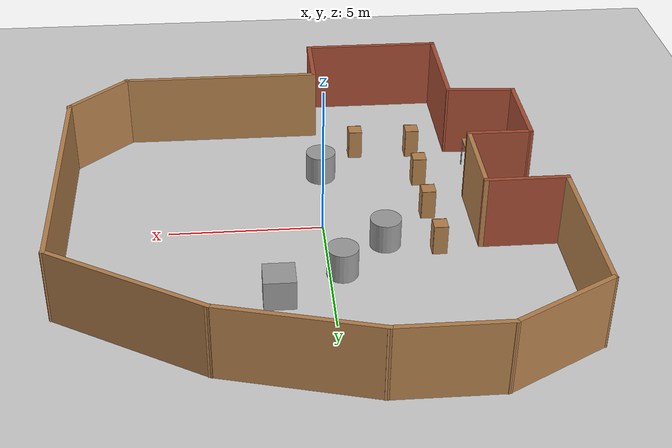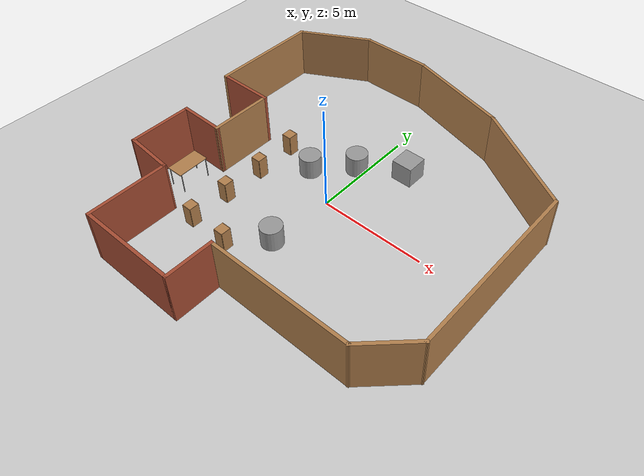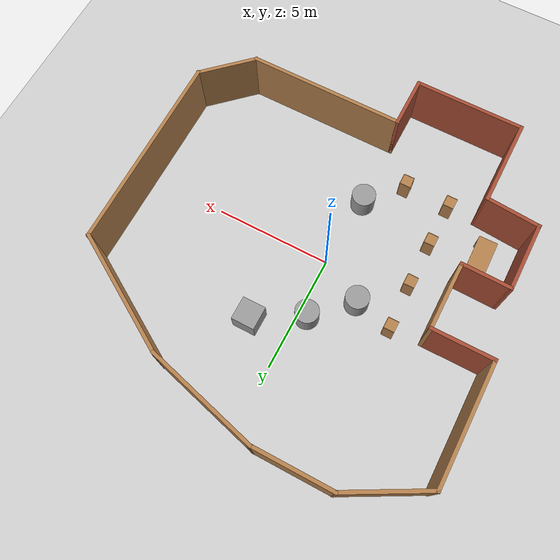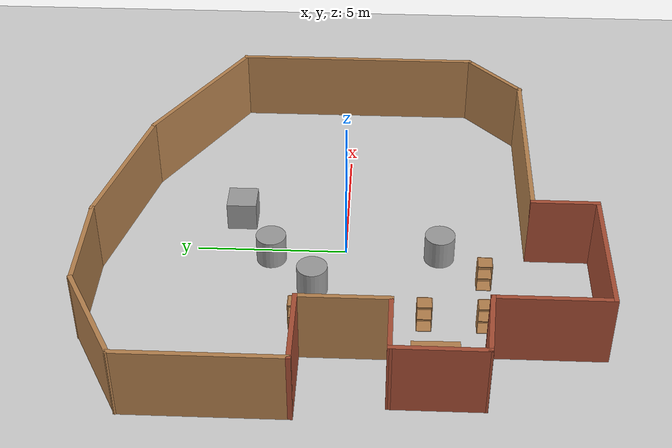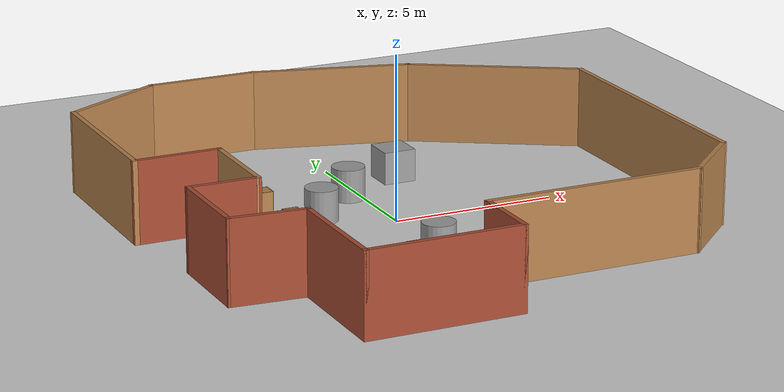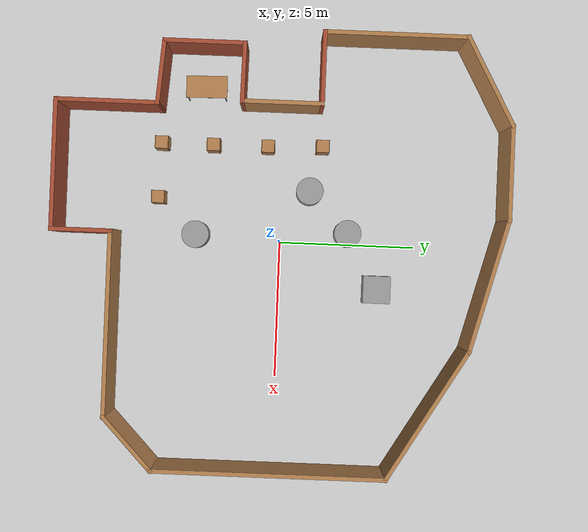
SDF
<sdf version="1.7">
 <world name="default">
  <light name="sun" type="directional">
   <pose>0 0 10 0 -0 0</pose>
   <diffuse>0.8 0.8 0.8 1</diffuse>
   <specular>0.2 0.2 0.2 1</specular>
   <attenuation>
    <range>1000</range>
    <constant>0.9</constant>
    <linear>0.01</linear>
    <quadratic>0.001</quadratic>
   </attenuation>
   <direction>-0.5 0.1 -0.9</direction>
   <spot><inner_angle>0</inner_angle><outer_angle>0</outer_angle><falloff>0</falloff></spot>
  </light>
  <model name="ground_plane">
   <static>1</static>
   <link name="link">
    <collision name="collision">
     <geometry><plane><normal>0 0 1</normal><size>100 100</size></plane></geometry>
     <surface>
      <contact><collide_bitmask>65535</collide_bitmask></contact>
      <friction><ode><mu>100</mu><mu2>50</mu2></ode></friction>
     </surface>
    </collision>
    <visual name="visual">
     <cast_shadows>0</cast_shadows>
     <geometry><plane><normal>0 0 1</normal><size>100 100</size></plane></geometry>
     <material>
      <script><uri>file://media/materials/scripts/gazebo.material</uri><name>Gazebo/Grey</name></script>
     </material>
    </visual>
   </link>
  </model>
  <gravity>0 0 -9.8</gravity>
  <magnetic_field>6e-06 2.3e-05 -4.2e-05</magnetic_field>
  <atmosphere type="adiabatic"/>
  <physics type="ode">
   <max_step_size>0.001</max_step_size>
   <real_time_factor>1</real_time_factor>
   <real_time_update_rate>1000</real_time_update_rate>
  </physics>
  <scene><ambient>0.4 0.4 0.4 1</ambient><background>0.7 0.7 0.7 1</background><shadows>1</shadows></scene>
  <spherical_coordinates>
   <surface_model>EARTH_WGS84</surface_model>
   <latitude_deg>0</latitude_deg>
   <longitude_deg>0</longitude_deg>
   <elevation>0</elevation>
   <heading_deg>0</heading_deg>
  </spherical_coordinates>
  <model name="new_world">
   <pose>0.407387 0.023145 0 0 -0 0</pose>
   <link name="Wall_10">
    <collision name="Wall_10_Collision">
     <geometry><box><size>4.75 0.15 2.5</size></box></geometry>
     <pose>0 0 1.25 0 -0 0</pose>
    </collision>
    <visual name="Wall_10_Visual">
     <pose>0 0 1.25 0 -0 0</pose>
     <geometry><box><size>4.75 0.15 2.5</size></box></geometry>
     <material>
      <script><uri>file://media/materials/scripts/gazebo.material</uri><name>Gazebo/Bricks</name></script>
      <ambient>1 1 1 1</ambient>
     </material>
     <meta><layer>0</layer></meta>
    </visual>
    <pose>-2.85118 -8.12237 0 0 -0 0</pose>
   </link>
   <link name="Wall_11">
    <collision name="Wall_11_Collision">
     <geometry><box><size>2.25 0.15 2.5</size></box></geometry>
     <pose>0 0 1.25 0 -0 0</pose>
    </collision>
    <visual name="Wall_11_Visual">
     <pose>0 0 1.25 0 -0 0</pose>
     <geometry><box><size>2.25 0.15 2.5</size></box></geometry>
     <material>
      <script><uri>file://media/materials/scripts/gazebo.material</uri><name>Gazebo/Bricks</name></script>
      <ambient>1 1 1 1</ambient>
     </material>
     <meta><layer>0</layer></meta>
    </visual>
    <pose>-0.551178 -7.07237 0 0 -0 1.5708</pose>
   </link>
   <link name="Wall_12">
    <collision name="Wall_12_Collision">
     <geometry><box><size>6.75 0.15 2.5</size></box></geometry>
     <pose>0 0 1.25 0 -0 0</pose>
    </collision>
    <visual name="Wall_12_Visual">
     <pose>0 0 1.25 0 -0 0</pose>
     <geometry><box><size>6.75 0.15 2.5</size></box></geometry>
     <material>
      <script><uri>file://media/materials/scripts/gazebo.material</uri><name>Gazebo/Wood</name></script>
      <ambient>1 1 1 1</ambient>
     </material>
     <meta><layer>0</layer></meta>
    </visual>
    <pose>2.74882 -6.02237 0 0 -0 0</pose>
   </link>
   <link name="Wall_13">
    <collision name="Wall_13_Collision">
     <geometry><box><size>2.67708 0.15 2.5</size></box></geometry>
     <pose>0 0 1.25 0 -0 0</pose>
    </collision>
    <visual name="Wall_13_Visual">
     <pose>0 0 1.25 0 -0 0</pose>
     <geometry><box><size>2.67708 0.15 2.5</size></box></geometry>
     <material>
      <script><uri>file://media/materials/scripts/gazebo.material</uri><name>Gazebo/Wood</name></script>
      <ambient>1 1 1 1</ambient>
     </material>
     <meta><layer>0</layer></meta>
    </visual>
    <pose>6.96832 -5.15587 0 0 -0 0.755732</pose>
   </link>
   <link name="Wall_14">
    <collision name="Wall_14_Collision">
     <geometry><box><size>8.49986 0.15 2.5</size></box></geometry>
     <pose>0 0 1.25 0 -0 0</pose>
    </collision>
    <visual name="Wall_14_Visual">
     <pose>0 0 1.25 0 -0 0</pose>
     <geometry><box><size>8.49986 0.15 2.5</size></box></geometry>
     <material>
      <script><uri>file://media/materials/scripts/gazebo.material</uri><name>Gazebo/Wood</name></script>
      <ambient>1 1 1 1</ambient>
     </material>
     <meta><layer>0</layer></meta>
    </visual>
    <pose>7.88782 -0.114366 0 0 -0 1.5708</pose>
   </link>
   <link name="Wall_15">
    <collision name="Wall_15_Collision">
     <geometry><box><size>5.55392 0.15 2.5</size></box></geometry>
     <pose>0 0 1.25 0 -0 0</pose>
    </collision>
    <visual name="Wall_15_Visual">
     <pose>0 0 1.25 0 -0 0</pose>
     <geometry><box><size>5.55392 0.15 2.5</size></box></geometry>
     <material>
      <script><uri>file://media/materials/scripts/gazebo.material</uri><name>Gazebo/Wood</name></script>
      <ambient>1 1 1 1</ambient>
     </material>
     <meta><layer>0</layer></meta>
    </visual>
    <pose>5.57082 5.45063 0 0 -0 2.60124</pose>
   </link>
   <link name="Wall_16">
    <collision name="Wall_16_Collision">
     <geometry><box><size>5.03329 0.15 2.5</size></box></geometry>
     <pose>0 0 1.25 0 -0 0</pose>
    </collision>
    <visual name="Wall_16_Visual">
     <pose>0 0 1.25 0 -0 0</pose>
     <geometry><box><size>5.03329 0.15 2.5</size></box></geometry>
     <material>
      <script><uri>file://media/materials/scripts/gazebo.material</uri><name>Gazebo/Wood</name></script>
      <ambient>1 1 1 1</ambient>
     </material>
     <meta><layer>0</layer></meta>
    </visual>
    <pose>0.894322 7.46813 0 0 -0 2.88166</pose>
   </link>
   <link name="Wall_17">
    <collision name="Wall_17_Collision">
     <geometry><box><size>3.49956 0.15 2.5</size></box></geometry>
     <pose>0 0 1.25 0 -0 0</pose>
    </collision>
    <visual name="Wall_17_Visual">
     <pose>0 0 1.25 0 -0 0</pose>
     <geometry><box><size>3.49956 0.15 2.5</size></box></geometry>
     <material>
      <script><uri>file://media/materials/scripts/gazebo.material</uri><name>Gazebo/Wood</name></script>
      <ambient>1 1 1 1</ambient>
     </material>
     <meta><layer>0</layer></meta>
    </visual>
    <pose>-3.14018 8.09563 0 0 -0 3.14159</pose>
   </link>
   <link name="Wall_18">
    <collision name="Wall_18_Collision">
     <geometry><box><size>3.65336 0.15 2.5</size></box></geometry>
     <pose>0 0 1.25 0 -0 0</pose>
    </collision>
    <visual name="Wall_18_Visual">
     <pose>0 0 1.25 0 -0 0</pose>
     <geometry><box><size>3.65336 0.15 2.5</size></box></geometry>
     <material>
      <script><uri>file://media/materials/scripts/gazebo.material</uri><name>Gazebo/Wood</name></script>
      <ambient>1 1 1 1</ambient>
     </material>
     <meta><layer>0</layer></meta>
    </visual>
    <pose>-6.35368 7.25814 0 0 -0 -2.64309</pose>
   </link>
   <link name="Wall_19">
    <collision name="Wall_19_Collision">
     <geometry><box><size>5.25 0.15 2.5</size></box></geometry>
     <pose>0 0 1.25 0 -0 0</pose>
    </collision>
    <visual name="Wall_19_Visual">
     <pose>0 0 1.25 0 -0 0</pose>
     <geometry><box><size>5.25 0.15 2.5</size></box></geometry>
     <material>
      <script><uri>file://media/materials/scripts/gazebo.material</uri><name>Gazebo/Wood</name></script>
      <ambient>1 1 1 1</ambient>
     </material>
     <meta><layer>0</layer></meta>
    </visual>
    <pose>-7.89218 3.87063 0 0 -0 -1.5708</pose>
   </link>
   <link name="Wall_20">
    <collision name="Wall_20_Collision">
     <geometry><box><size>2.71038 0.15 2.5</size></box></geometry>
     <pose>0 0 1.25 0 -0 0</pose>
    </collision>
    <visual name="Wall_20_Visual">
     <pose>0 0 1.25 0 -0 0</pose>
     <geometry><box><size>2.71038 0.15 2.5</size></box></geometry>
     <material>
      <script><uri>file://media/materials/scripts/gazebo.material</uri><name>Gazebo/Bricks</name></script>
      <ambient>1 1 1 1</ambient>
     </material>
     <meta><layer>0</layer></meta>
    </visual>
    <pose>-6.61218 1.32063 0 0 -0 0</pose>
   </link>
   <link name="Wall_21">
    <collision name="Wall_21_Collision">
     <geometry><box><size>3 0.15 2.5</size></box></geometry>
     <pose>0 0 1.25 0 -0 0</pose>
    </collision>
    <visual name="Wall_21_Visual">
     <pose>0 0 1.25 0 -0 0</pose>
     <geometry><box><size>3 0.15 2.5</size></box></geometry>
     <material>
      <script><uri>file://media/materials/scripts/gazebo.material</uri><name>Gazebo/Wood</name></script>
      <ambient>1 1 1 1</ambient>
     </material>
     <meta><layer>0</layer></meta>
    </visual>
    <pose>-5.33218 -0.104366 0 0 -0 -1.5708</pose>
   </link>
   <link name="Wall_22">
    <collision name="Wall_22_Collision">
     <geometry><box><size>2.19755 0.15 2.5</size></box></geometry>
     <pose>0 0 1.25 0 -0 0</pose>
    </collision>
    <visual name="Wall_22_Visual">
     <pose>0 0 1.25 0 -0 0</pose>
     <geometry><box><size>2.19755 0.15 2.5</size></box></geometry>
     <material>
      <script><uri>file://media/materials/scripts/gazebo.material</uri><name>Gazebo/Bricks</name></script>
      <ambient>1 1 1 1</ambient>
     </material>
     <meta><layer>0</layer></meta>
    </visual>
    <pose>-6.35568 -1.51587 0 0 -0 3.1284</pose>
   </link>
   <link name="Wall_23">
    <collision name="Wall_23_Collision">
     <geometry><box><size>3.00041 0.15 2.5</size></box></geometry>
     <pose>0 0 1.25 0 -0 0</pose>
    </collision>
    <visual name="Wall_23_Visual">
     <pose>0 0 1.25 0 -0 0</pose>
     <geometry><box><size>3.00041 0.15 2.5</size></box></geometry>
     <material>
      <script><uri>file://media/materials/scripts/gazebo.material</uri><name>Gazebo/Bricks</name></script>
      <ambient>1 1 1 1</ambient>
     </material>
     <meta><layer>0</layer></meta>
    </visual>
    <pose>-7.37918 -2.92787 0 0 -0 -1.5708</pose>
   </link>
   <link name="Wall_24">
    <collision name="Wall_24_Collision">
     <geometry><box><size>2.3844 0.15 2.5</size></box></geometry>
     <pose>0 0 1.25 0 -0 0</pose>
    </collision>
    <visual name="Wall_24_Visual">
     <pose>0 0 1.25 0 -0 0</pose>
     <geometry><box><size>2.3844 0.15 2.5</size></box></geometry>
     <material>
      <script><uri>file://media/materials/scripts/gazebo.material</uri><name>Gazebo/Bricks</name></script>
      <ambient>1 1 1 1</ambient>
     </material>
     <meta><layer>0</layer></meta>
    </visual>
    <pose>-6.26518 -4.43787 0 0 -0 -0.075708</pose>
   </link>
   <link name="Wall_5">
    <collision name="Wall_5_Collision">
     <geometry><box><size>3.75 0.15 2.5</size></box></geometry>
     <pose>0 0 1.25 0 -0 0</pose>
    </collision>
    <visual name="Wall_5_Visual">
     <pose>0 0 1.25 0 -0 0</pose>
     <geometry><box><size>3.75 0.15 2.5</size></box></geometry>
     <material>
      <script><uri>file://media/materials/scripts/gazebo.material</uri><name>Gazebo/Bricks</name></script>
      <ambient>1 1 1 1</ambient>
     </material>
     <meta><layer>0</layer></meta>
    </visual>
    <pose>-5.15118 -6.32237 0 0 -0 -1.5708</pose>
   </link>
   <static>1</static>
  </model>
  <model name="cabinet">
   <static>1</static>
   <link name="cabinet_bottom_plate">
    <inertial>
     <pose>0 0 -1 0 -0 0</pose>
     <inertia><ixx>2.05</ixx><ixy>0</ixy><ixz>0</ixz><iyy>2.05</iyy><iyz>0</iyz><izz>2.05</izz></inertia>
     <mass>25</mass>
    </inertial>
    <collision name="cabinet_bottom_plate_geom">
     <pose>0 0 0.01 0 -0 0</pose>
     <geometry><box><size>0.45 0.45 0.02</size></box></geometry>
    </collision>
    <visual name="cabinet_bottom_plate_geom_visual">
     <pose>0 0 0.01 0 -0 0</pose>
     <geometry><box><size>0.45 0.45 0.02</size></box></geometry>
     <material>
      <script><uri>file://media/materials/scripts/gazebo.material</uri><name>Gazebo/Wood</name></script>
     </material>
    </visual>
    <collision name="cabinet_bottom_plate_geom_cabinet_back_plate">
     <pose>0.235 0 0.51 0 -0 0</pose>
     <geometry><box><size>0.02 0.45 1.02</size></box></geometry>
    </collision>
    <visual name="cabinet_bottom_plate_geom_cabinet_back_plate_visual">
     <pose>0.235 0 0.51 0 -0 0</pose>
     <geometry><box><size>0.02 0.45 1.02</size></box></geometry>
     <material>
      <script><uri>file://media/materials/scripts/gazebo.material</uri><name>Gazebo/Wood</name></script>
     </material>
    </visual>
    <collision name="cabinet_bottom_plate_geom_cabinet_left_plate">
     <pose>0 0.235 0.51 0 -0 0</pose>
     <geometry><box><size>0.45 0.02 1.02</size></box></geometry>
    </collision>
    <visual name="cabinet_bottom_plate_geom_cabinet_left_plate_visual">
     <pose>0 0.235 0.51 0 -0 0</pose>
     <geometry><box><size>0.45 0.02 1.02</size></box></geometry>
     <material>
      <script><uri>file://media/materials/scripts/gazebo.material</uri><name>Gazebo/Wood</name></script>
     </material>
    </visual>
    <collision name="cabinet_bottom_plate_geom_cabinet_middle_plate">
     <pose>0 0 0.51 0 -0 0</pose>
     <geometry><box><size>0.45 0.45 0.02</size></box></geometry>
    </collision>
    <visual name="cabinet_bottom_plate_geom_cabinet_middle_plate_visual">
     <pose>0 0 0.51 0 -0 0</pose>
     <geometry><box><size>0.45 0.45 0.02</size></box></geometry>
     <material>
      <script><uri>file://media/materials/scripts/gazebo.material</uri><name>Gazebo/Wood</name></script>
     </material>
    </visual>
    <collision name="cabinet_bottom_plate_geom_cabinet_right_plate">
     <pose>0 -0.235 0.51 0 -0 0</pose>
     <geometry><box><size>0.45 0.02 1.02</size></box></geometry>
    </collision>
    <visual name="cabinet_bottom_plate_geom_cabinet_right_plate_visual">
     <pose>0 -0.235 0.51 0 -0 0</pose>
     <geometry><box><size>0.45 0.02 1.02</size></box></geometry>
     <material>
      <script><uri>file://media/materials/scripts/gazebo.material</uri><name>Gazebo/Wood</name></script>
     </material>
    </visual>
    <collision name="cabinet_bottom_plate_geom_cabinet_top_plate">
     <pose>0 0 1.01 0 -0 0</pose>
     <geometry><box><size>0.45 0.45 0.02</size></box></geometry>
    </collision>
    <visual name="cabinet_bottom_plate_geom_cabinet_top_plate_visual">
     <pose>0 0 1.01 0 -0 0</pose>
     <geometry><box><size>0.45 0.45 0.02</size></box></geometry>
     <material>
      <script><uri>file://media/materials/scripts/gazebo.material</uri><name>Gazebo/Wood</name></script>
     </material>
    </visual>
   </link>
   <pose>-3.49693 -4.44642 0 0 -0 0</pose>
  </model>
  <model name="cabinet_0">
   <static>1</static>
   <link name="cabinet_bottom_plate">
    <inertial>
     <pose>0 0 -1 0 -0 0</pose>
     <inertia><ixx>2.05</ixx><ixy>0</ixy><ixz>0</ixz><iyy>2.05</iyy><iyz>0</iyz><izz>2.05</izz></inertia>
     <mass>25</mass>
    </inertial>
    <collision name="cabinet_bottom_plate_geom">
     <pose>0 0 0.01 0 -0 0</pose>
     <geometry><box><size>0.45 0.45 0.02</size></box></geometry>
    </collision>
    <visual name="cabinet_bottom_plate_geom_visual">
     <pose>0 0 0.01 0 -0 0</pose>
     <geometry><box><size>0.45 0.45 0.02</size></box></geometry>
     <material>
      <script><uri>file://media/materials/scripts/gazebo.material</uri><name>Gazebo/Wood</name></script>
     </material>
    </visual>
    <collision name="cabinet_bottom_plate_geom_cabinet_back_plate">
     <pose>0.235 0 0.51 0 -0 0</pose>
     <geometry><box><size>0.02 0.45 1.02</size></box></geometry>
    </collision>
    <visual name="cabinet_bottom_plate_geom_cabinet_back_plate_visual">
     <pose>0.235 0 0.51 0 -0 0</pose>
     <geometry><box><size>0.02 0.45 1.02</size></box></geometry>
     <material>
      <script><uri>file://media/materials/scripts/gazebo.material</uri><name>Gazebo/Wood</name></script>
     </material>
    </visual>
    <collision name="cabinet_bottom_plate_geom_cabinet_left_plate">
     <pose>0 0.235 0.51 0 -0 0</pose>
     <geometry><box><size>0.45 0.02 1.02</size></box></geometry>
    </collision>
    <visual name="cabinet_bottom_plate_geom_cabinet_left_plate_visual">
     <pose>0 0.235 0.51 0 -0 0</pose>
     <geometry><box><size>0.45 0.02 1.02</size></box></geometry>
     <material>
      <script><uri>file://media/materials/scripts/gazebo.material</uri><name>Gazebo/Wood</name></script>
     </material>
    </visual>
    <collision name="cabinet_bottom_plate_geom_cabinet_middle_plate">
     <pose>0 0 0.51 0 -0 0</pose>
     <geometry><box><size>0.45 0.45 0.02</size></box></geometry>
    </collision>
    <visual name="cabinet_bottom_plate_geom_cabinet_middle_plate_visual">
     <pose>0 0 0.51 0 -0 0</pose>
     <geometry><box><size>0.45 0.45 0.02</size></box></geometry>
     <material>
      <script><uri>file://media/materials/scripts/gazebo.material</uri><name>Gazebo/Wood</name></script>
     </material>
    </visual>
    <collision name="cabinet_bottom_plate_geom_cabinet_right_plate">
     <pose>0 -0.235 0.51 0 -0 0</pose>
     <geometry><box><size>0.45 0.02 1.02</size></box></geometry>
    </collision>
    <visual name="cabinet_bottom_plate_geom_cabinet_right_plate_visual">
     <pose>0 -0.235 0.51 0 -0 0</pose>
     <geometry><box><size>0.45 0.02 1.02</size></box></geometry>
     <material>
      <script><uri>file://media/materials/scripts/gazebo.material</uri><name>Gazebo/Wood</name></script>
     </material>
    </visual>
    <collision name="cabinet_bottom_plate_geom_cabinet_top_plate">
     <pose>0 0 1.01 0 -0 0</pose>
     <geometry><box><size>0.45 0.45 0.02</size></box></geometry>
    </collision>
    <visual name="cabinet_bottom_plate_geom_cabinet_top_plate_visual">
     <pose>0 0 1.01 0 -0 0</pose>
     <geometry><box><size>0.45 0.45 0.02</size></box></geometry>
     <material>
      <script><uri>file://media/materials/scripts/gazebo.material</uri><name>Gazebo/Wood</name></script>
     </material>
    </visual>
   </link>
   <pose>-3.48608 -2.54995 0 0 -0 0</pose>
  </model>
  <model name="cabinet_1">
   <static>1</static>
   <link name="cabinet_bottom_plate">
    <inertial>
     <pose>0 0 -1 0 -0 0</pose>
     <inertia><ixx>2.05</ixx><ixy>0</ixy><ixz>0</ixz><iyy>2.05</iyy><iyz>0</iyz><izz>2.05</izz></inertia>
     <mass>25</mass>
    </inertial>
    <collision name="cabinet_bottom_plate_geom">
     <pose>0 0 0.01 0 -0 0</pose>
     <geometry><box><size>0.45 0.45 0.02</size></box></geometry>
    </collision>
    <visual name="cabinet_bottom_plate_geom_visual">
     <pose>0 0 0.01 0 -0 0</pose>
     <geometry><box><size>0.45 0.45 0.02</size></box></geometry>
     <material>
      <script><uri>file://media/materials/scripts/gazebo.material</uri><name>Gazebo/Wood</name></script>
     </material>
    </visual>
    <collision name="cabinet_bottom_plate_geom_cabinet_back_plate">
     <pose>0.235 0 0.51 0 -0 0</pose>
     <geometry><box><size>0.02 0.45 1.02</size></box></geometry>
    </collision>
    <visual name="cabinet_bottom_plate_geom_cabinet_back_plate_visual">
     <pose>0.235 0 0.51 0 -0 0</pose>
     <geometry><box><size>0.02 0.45 1.02</size></box></geometry>
     <material>
      <script><uri>file://media/materials/scripts/gazebo.material</uri><name>Gazebo/Wood</name></script>
     </material>
    </visual>
    <collision name="cabinet_bottom_plate_geom_cabinet_left_plate">
     <pose>0 0.235 0.51 0 -0 0</pose>
     <geometry><box><size>0.45 0.02 1.02</size></box></geometry>
    </collision>
    <visual name="cabinet_bottom_plate_geom_cabinet_left_plate_visual">
     <pose>0 0.235 0.51 0 -0 0</pose>
     <geometry><box><size>0.45 0.02 1.02</size></box></geometry>
     <material>
      <script><uri>file://media/materials/scripts/gazebo.material</uri><name>Gazebo/Wood</name></script>
     </material>
    </visual>
    <collision name="cabinet_bottom_plate_geom_cabinet_middle_plate">
     <pose>0 0 0.51 0 -0 0</pose>
     <geometry><box><size>0.45 0.45 0.02</size></box></geometry>
    </collision>
    <visual name="cabinet_bottom_plate_geom_cabinet_middle_plate_visual">
     <pose>0 0 0.51 0 -0 0</pose>
     <geometry><box><size>0.45 0.45 0.02</size></box></geometry>
     <material>
      <script><uri>file://media/materials/scripts/gazebo.material</uri><name>Gazebo/Wood</name></script>
     </material>
    </visual>
    <collision name="cabinet_bottom_plate_geom_cabinet_right_plate">
     <pose>0 -0.235 0.51 0 -0 0</pose>
     <geometry><box><size>0.45 0.02 1.02</size></box></geometry>
    </collision>
    <visual name="cabinet_bottom_plate_geom_cabinet_right_plate_visual">
     <pose>0 -0.235 0.51 0 -0 0</pose>
     <geometry><box><size>0.45 0.02 1.02</size></box></geometry>
     <material>
      <script><uri>file://media/materials/scripts/gazebo.material</uri><name>Gazebo/Wood</name></script>
     </material>
    </visual>
    <collision name="cabinet_bottom_plate_geom_cabinet_top_plate">
     <pose>0 0 1.01 0 -0 0</pose>
     <geometry><box><size>0.45 0.45 0.02</size></box></geometry>
    </collision>
    <visual name="cabinet_bottom_plate_geom_cabinet_top_plate_visual">
     <pose>0 0 1.01 0 -0 0</pose>
     <geometry><box><size>0.45 0.45 0.02</size></box></geometry>
     <material>
      <script><uri>file://media/materials/scripts/gazebo.material</uri><name>Gazebo/Wood</name></script>
     </material>
    </visual>
   </link>
   <pose>-3.49817 -0.548184 0 0 -0 0</pose>
  </model>
  <model name="cabinet_2">
   <static>1</static>
   <link name="cabinet_bottom_plate">
    <inertial>
     <pose>0 0 -1 0 -0 0</pose>
     <inertia><ixx>2.05</ixx><ixy>0</ixy><ixz>0</ixz><iyy>2.05</iyy><iyz>0</iyz><izz>2.05</izz></inertia>
     <mass>25</mass>
    </inertial>
    <collision name="cabinet_bottom_plate_geom">
     <pose>0 0 0.01 0 -0 0</pose>
     <geometry><box><size>0.45 0.45 0.02</size></box></geometry>
    </collision>
    <visual name="cabinet_bottom_plate_geom_visual">
     <pose>0 0 0.01 0 -0 0</pose>
     <geometry><box><size>0.45 0.45 0.02</size></box></geometry>
     <material>
      <script><uri>file://media/materials/scripts/gazebo.material</uri><name>Gazebo/Wood</name></script>
     </material>
    </visual>
    <collision name="cabinet_bottom_plate_geom_cabinet_back_plate">
     <pose>0.235 0 0.51 0 -0 0</pose>
     <geometry><box><size>0.02 0.45 1.02</size></box></geometry>
    </collision>
    <visual name="cabinet_bottom_plate_geom_cabinet_back_plate_visual">
     <pose>0.235 0 0.51 0 -0 0</pose>
     <geometry><box><size>0.02 0.45 1.02</size></box></geometry>
     <material>
      <script><uri>file://media/materials/scripts/gazebo.material</uri><name>Gazebo/Wood</name></script>
     </material>
    </visual>
    <collision name="cabinet_bottom_plate_geom_cabinet_left_plate">
     <pose>0 0.235 0.51 0 -0 0</pose>
     <geometry><box><size>0.45 0.02 1.02</size></box></geometry>
    </collision>
    <visual name="cabinet_bottom_plate_geom_cabinet_left_plate_visual">
     <pose>0 0.235 0.51 0 -0 0</pose>
     <geometry><box><size>0.45 0.02 1.02</size></box></geometry>
     <material>
      <script><uri>file://media/materials/scripts/gazebo.material</uri><name>Gazebo/Wood</name></script>
     </material>
    </visual>
    <collision name="cabinet_bottom_plate_geom_cabinet_middle_plate">
     <pose>0 0 0.51 0 -0 0</pose>
     <geometry><box><size>0.45 0.45 0.02</size></box></geometry>
    </collision>
    <visual name="cabinet_bottom_plate_geom_cabinet_middle_plate_visual">
     <pose>0 0 0.51 0 -0 0</pose>
     <geometry><box><size>0.45 0.45 0.02</size></box></geometry>
     <material>
      <script><uri>file://media/materials/scripts/gazebo.material</uri><name>Gazebo/Wood</name></script>
     </material>
    </visual>
    <collision name="cabinet_bottom_plate_geom_cabinet_right_plate">
     <pose>0 -0.235 0.51 0 -0 0</pose>
     <geometry><box><size>0.45 0.02 1.02</size></box></geometry>
    </collision>
    <visual name="cabinet_bottom_plate_geom_cabinet_right_plate_visual">
     <pose>0 -0.235 0.51 0 -0 0</pose>
     <geometry><box><size>0.45 0.02 1.02</size></box></geometry>
     <material>
      <script><uri>file://media/materials/scripts/gazebo.material</uri><name>Gazebo/Wood</name></script>
     </material>
    </visual>
    <collision name="cabinet_bottom_plate_geom_cabinet_top_plate">
     <pose>0 0 1.01 0 -0 0</pose>
     <geometry><box><size>0.45 0.45 0.02</size></box></geometry>
    </collision>
    <visual name="cabinet_bottom_plate_geom_cabinet_top_plate_visual">
     <pose>0 0 1.01 0 -0 0</pose>
     <geometry><box><size>0.45 0.45 0.02</size></box></geometry>
     <material>
      <script><uri>file://media/materials/scripts/gazebo.material</uri><name>Gazebo/Wood</name></script>
     </material>
    </visual>
   </link>
   <pose>-3.56822 1.45626 0 0 -0 0</pose>
  </model>
  <model name="cabinet_3">
   <static>1</static>
   <link name="cabinet_bottom_plate">
    <inertial>
     <pose>0 0 -1 0 -0 0</pose>
     <inertia><ixx>2.05</ixx><ixy>0</ixy><ixz>0</ixz><iyy>2.05</iyy><iyz>0</iyz><izz>2.05</izz></inertia>
     <mass>25</mass>
    </inertial>
    <collision name="cabinet_bottom_plate_geom">
     <pose>0 0 0.01 0 -0 0</pose>
     <geometry><box><size>0.45 0.45 0.02</size></box></geometry>
    </collision>
    <visual name="cabinet_bottom_plate_geom_visual">
     <pose>0 0 0.01 0 -0 0</pose>
     <geometry><box><size>0.45 0.45 0.02</size></box></geometry>
     <material>
      <script><uri>file://media/materials/scripts/gazebo.material</uri><name>Gazebo/Wood</name></script>
     </material>
    </visual>
    <collision name="cabinet_bottom_plate_geom_cabinet_back_plate">
     <pose>0.235 0 0.51 0 -0 0</pose>
     <geometry><box><size>0.02 0.45 1.02</size></box></geometry>
    </collision>
    <visual name="cabinet_bottom_plate_geom_cabinet_back_plate_visual">
     <pose>0.235 0 0.51 0 -0 0</pose>
     <geometry><box><size>0.02 0.45 1.02</size></box></geometry>
     <material>
      <script><uri>file://media/materials/scripts/gazebo.material</uri><name>Gazebo/Wood</name></script>
     </material>
    </visual>
    <collision name="cabinet_bottom_plate_geom_cabinet_left_plate">
     <pose>0 0.235 0.51 0 -0 0</pose>
     <geometry><box><size>0.45 0.02 1.02</size></box></geometry>
    </collision>
    <visual name="cabinet_bottom_plate_geom_cabinet_left_plate_visual">
     <pose>0 0.235 0.51 0 -0 0</pose>
     <geometry><box><size>0.45 0.02 1.02</size></box></geometry>
     <material>
      <script><uri>file://media/materials/scripts/gazebo.material</uri><name>Gazebo/Wood</name></script>
     </material>
    </visual>
    <collision name="cabinet_bottom_plate_geom_cabinet_middle_plate">
     <pose>0 0 0.51 0 -0 0</pose>
     <geometry><box><size>0.45 0.45 0.02</size></box></geometry>
    </collision>
    <visual name="cabinet_bottom_plate_geom_cabinet_middle_plate_visual">
     <pose>0 0 0.51 0 -0 0</pose>
     <geometry><box><size>0.45 0.45 0.02</size></box></geometry>
     <material>
      <script><uri>file://media/materials/scripts/gazebo.material</uri><name>Gazebo/Wood</name></script>
     </material>
    </visual>
    <collision name="cabinet_bottom_plate_geom_cabinet_right_plate">
     <pose>0 -0.235 0.51 0 -0 0</pose>
     <geometry><box><size>0.45 0.02 1.02</size></box></geometry>
    </collision>
    <visual name="cabinet_bottom_plate_geom_cabinet_right_plate_visual">
     <pose>0 -0.235 0.51 0 -0 0</pose>
     <geometry><box><size>0.45 0.02 1.02</size></box></geometry>
     <material>
      <script><uri>file://media/materials/scripts/gazebo.material</uri><name>Gazebo/Wood</name></script>
     </material>
    </visual>
    <collision name="cabinet_bottom_plate_geom_cabinet_top_plate">
     <pose>0 0 1.01 0 -0 0</pose>
     <geometry><box><size>0.45 0.45 0.02</size></box></geometry>
    </collision>
    <visual name="cabinet_bottom_plate_geom_cabinet_top_plate_visual">
     <pose>0 0 1.01 0 -0 0</pose>
     <geometry><box><size>0.45 0.45 0.02</size></box></geometry>
     <material>
      <script><uri>file://media/materials/scripts/gazebo.material</uri><name>Gazebo/Wood</name></script>
     </material>
    </visual>
   </link>
   <pose>-1.50004 -4.50835 0 0 -0 0</pose>
  </model>
  <model name="table">
   <static>1</static>
   <link name="link">
    <collision name="surface">
     <pose>0 0 1 0 -0 0</pose>
     <geometry><box><size>1.5 0.8 0.03</size></box></geometry>
     <surface><friction><ode><mu>0.6</mu><mu2>0.6</mu2></ode></friction></surface>
    </collision>
    <visual name="visual1">
     <pose>0 0 1 0 -0 0</pose>
     <geometry><box><size>1.5 0.8 0.03</size></box></geometry>
     <material>
      <script><uri>file://media/materials/scripts/gazebo.material</uri><name>Gazebo/Wood</name></script>
     </material>
    </visual>
    <collision name="front_left_leg">
     <pose>0.68 0.38 0.5 0 -0 0</pose>
     <geometry><cylinder><radius>0.02</radius><length>1</length></cylinder></geometry>
    </collision>
    <visual name="front_left_leg">
     <pose>0.68 0.38 0.5 0 -0 0</pose>
     <geometry><cylinder><radius>0.02</radius><length>1</length></cylinder></geometry>
     <material>
      <script><uri>file://media/materials/scripts/gazebo.material</uri><name>Gazebo/Grey</name></script>
     </material>
    </visual>
    <collision name="front_right_leg">
     <pose>0.68 -0.38 0.5 0 -0 0</pose>
     <geometry><cylinder><radius>0.02</radius><length>1</length></cylinder></geometry>
    </collision>
    <visual name="front_right_leg">
     <pose>0.68 -0.38 0.5 0 -0 0</pose>
     <geometry><cylinder><radius>0.02</radius><length>1</length></cylinder></geometry>
     <material>
      <script><uri>file://media/materials/scripts/gazebo.material</uri><name>Gazebo/Grey</name></script>
     </material>
    </visual>
    <collision name="back_right_leg">
     <pose>-0.68 -0.38 0.5 0 -0 0</pose>
     <geometry><cylinder><radius>0.02</radius><length>1</length></cylinder></geometry>
    </collision>
    <visual name="back_right_leg">
     <pose>-0.68 -0.38 0.5 0 -0 0</pose>
     <geometry><cylinder><radius>0.02</radius><length>1</length></cylinder></geometry>
     <material>
      <script><uri>file://media/materials/scripts/gazebo.material</uri><name>Gazebo/Grey</name></script>
     </material>
    </visual>
    <collision name="back_left_leg">
     <pose>-0.68 0.38 0.5 0 -0 0</pose>
     <geometry><cylinder><radius>0.02</radius><length>1</length></cylinder></geometry>
    </collision>
    <visual name="back_left_leg">
     <pose>-0.68 0.38 0.5 0 -0 0</pose>
     <geometry><cylinder><radius>0.02</radius><length>1</length></cylinder></geometry>
     <material>
      <script><uri>file://media/materials/scripts/gazebo.material</uri><name>Gazebo/Grey</name></script>
     </material>
    </visual>
   </link>
   <pose>-5.56933 -2.87038 0 0 0 -1.55207</pose>
  </model>
  <model name="unit_box">
   <pose>1.61076 3.62425 0.499995 -1e-05 -0 -0</pose>
   <link name="link">
    <inertial>
     <mass>1</mass>
     <inertia>
      <ixx>0.166667</ixx>
      <ixy>0</ixy>
      <ixz>0</ixz>
      <iyy>0.166667</iyy>
      <iyz>0</iyz>
      <izz>0.166667</izz>
     </inertia>
    </inertial>
    <collision name="collision"><geometry><box><size>1 1 1</size></box></geometry></collision>
    <visual name="visual">
     <geometry><box><size>1 1 1</size></box></geometry>
     <material>
      <script><name>Gazebo/Grey</name><uri>file://media/materials/scripts/gazebo.material</uri></script>
     </material>
    </visual>
   </link>
  </model>
  <model name="unit_cylinder">
   <pose>-1.90215 1.04195 0.499997 3e-06 4e-06 -0</pose>
   <link name="link">
    <inertial>
     <mass>1</mass>
     <inertia><ixx>0.145833</ixx><ixy>0</ixy><ixz>0</ixz><iyy>0.145833</iyy><iyz>0</iyz><izz>0.125</izz></inertia>
    </inertial>
    <collision name="collision">
     <geometry><cylinder><radius>0.5</radius><length>1</length></cylinder></geometry>
    </collision>
    <visual name="visual">
     <geometry><cylinder><radius>0.5</radius><length>1</length></cylinder></geometry>
     <material>
      <script><name>Gazebo/Grey</name><uri>file://media/materials/scripts/gazebo.material</uri></script>
     </material>
    </visual>
   </link>
  </model>
  <model name="unit_cylinder_0">
   <pose>-0.397225 2.48671 0.499993 -3e-06 -4e-06 -0</pose>
   <link name="link">
    <inertial>
     <mass>1</mass>
     <inertia><ixx>0.145833</ixx><ixy>0</ixy><ixz>0</ixz><iyy>0.145833</iyy><iyz>0</iyz><izz>0.125</izz></inertia>
    </inertial>
    <collision name="collision">
     <geometry><cylinder><radius>0.5</radius><length>1</length></cylinder></geometry>
    </collision>
    <visual name="visual">
     <geometry><cylinder><radius>0.5</radius><length>1</length></cylinder></geometry>
     <material>
      <script><name>Gazebo/Grey</name><uri>file://media/materials/scripts/gazebo.material</uri></script>
     </material>
    </visual>
   </link>
  </model>
  <model name="unit_cylinder_1">
   <pose>-0.17161 -3.09432 0.499997 3e-06 4e-06 -0</pose>
   <link name="link">
    <inertial>
     <mass>1</mass>
     <inertia><ixx>0.145833</ixx><ixy>0</ixy><ixz>0</ixz><iyy>0.145833</iyy><iyz>0</iyz><izz>0.125</izz></inertia>
    </inertial>
    <collision name="collision">
     <geometry><cylinder><radius>0.5</radius><length>1</length></cylinder></geometry>
    </collision>
    <visual name="visual">
     <geometry><cylinder><radius>0.5</radius><length>1</length></cylinder></geometry>
     <material>
      <script><name>Gazebo/Grey</name><uri>file://media/materials/scripts/gazebo.material</uri></script>
     </material>
    </visual>
   </link>
  </model>
 </world>
</sdf>
